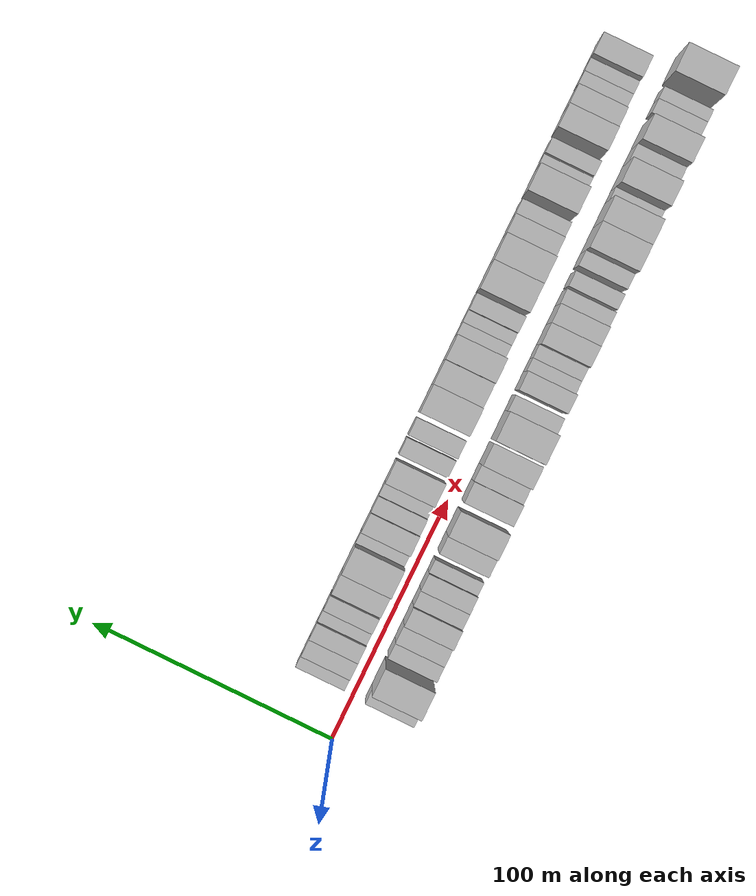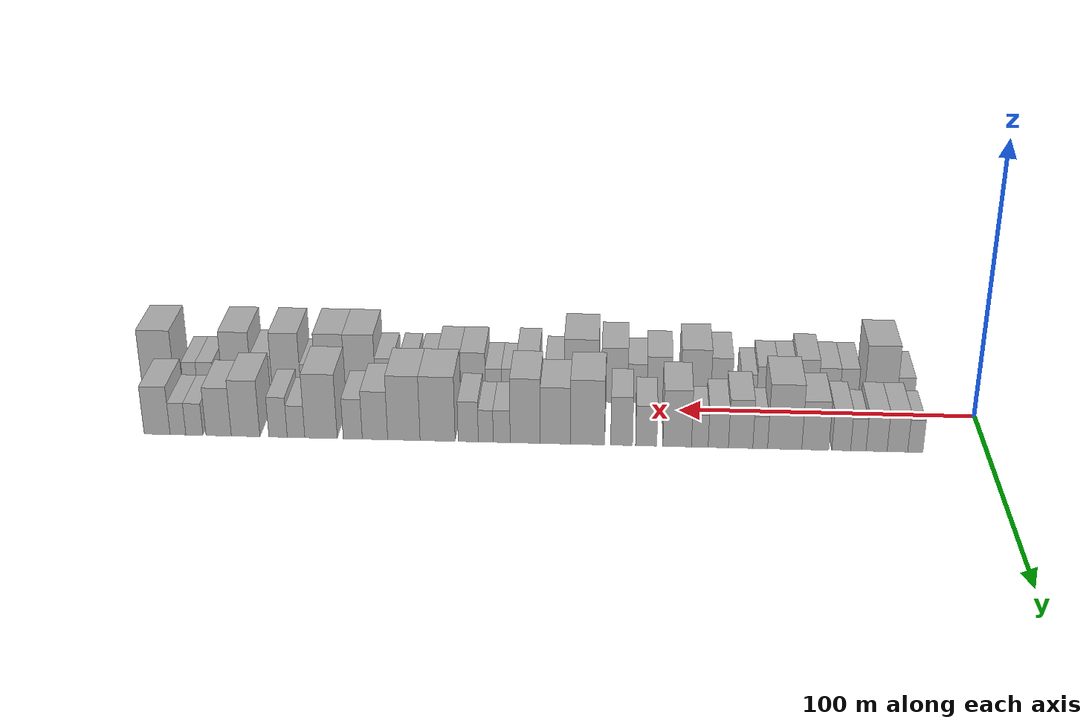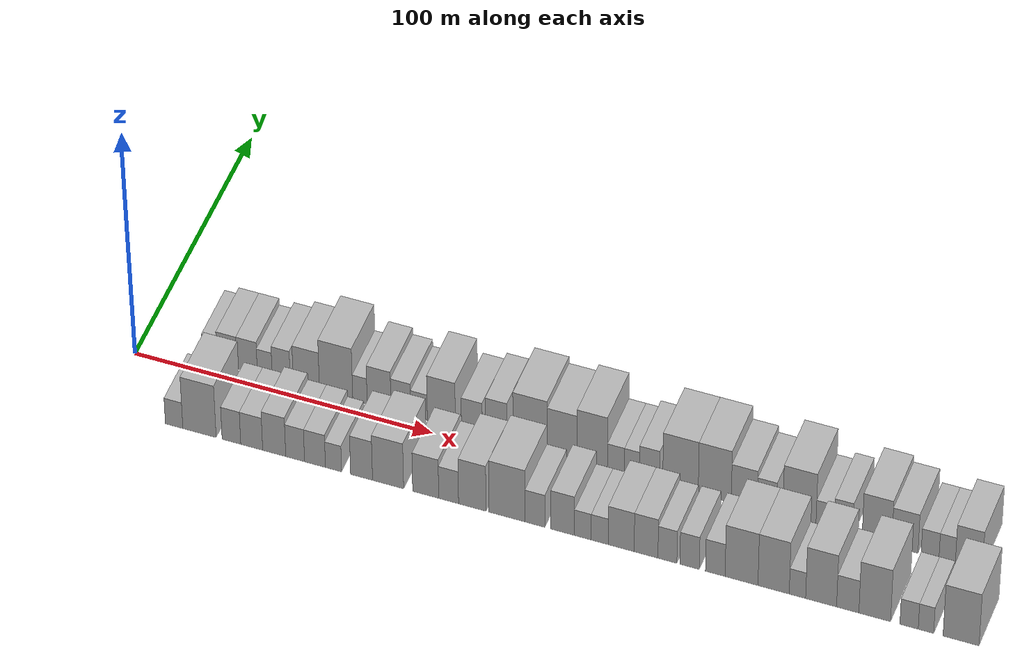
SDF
<sdf version="1.6">
 <world name="default">
  <scene>
   <sky><clouds><speed>12</speed></clouds></sky>
   <ambient>0.4 0.4 0.4 1</ambient>
   <background>0.7 0.7 0.7 1</background>
   <shadows>1</shadows>
  </scene>
  <gravity>0 0 -9.8066</gravity>
  <magnetic_field>6e-06 2.3e-05 -4.2e-05</magnetic_field>
  <physics default="0" name="default_physics" type="ode">
   <ode>
    <solver>
     <type>quick</type>
     <iters>10</iters>
     <sor>1.0</sor>
     <use_dynamic_moi_rescaling>0</use_dynamic_moi_rescaling>
    </solver>
    <constraints>
     <cfm>0</cfm>
     <erp>0.2</erp>
     <contact_max_correcting_vel>100</contact_max_correcting_vel>
     <contact_surface_layer>0.001</contact_surface_layer>
    </constraints>
   </ode>
   <max_step_size>0.004</max_step_size>
   <real_time_factor>1</real_time_factor>
   <real_time_update_rate>250</real_time_update_rate>
  </physics>
  <light name="sun" type="directional">
   <pose>0 0 10 0 0 0</pose>
   <diffuse>0.8 0.8 0.8 1</diffuse>
   <specular>0.2 0.2 0.2 1</specular>
   <attenuation>
    <range>1000</range>
    <constant>0.9</constant>
    <linear>0.01</linear>
    <quadratic>0.001</quadratic>
   </attenuation>
   <direction>-0.5 0.1 -0.9</direction>
  </light>
  <model name="building_1">
   <static>1</static>
   <pose>23.4650 14.5000 0 0.000000 0.000000 1.570796</pose>
   <link name="link">
    <pose>0 0 6.00 0 0 0</pose>
    <collision name="collision"><geometry><box><size>20.0000 4.9301 12.0000</size></box></geometry></collision>
    <visual name="visual">
     <cast_shadows>0</cast_shadows>
     <geometry><box><size>20.0000 4.9301 12.0000</size></box></geometry>
     <material>
      <script>
       <uri>model://HANNAS_wall/materials/scripts</uri>
       <uri>model://HANNAS_wall/materials/textures</uri>
       <name>vrc/HANNAS_wall</name>
      </script>
     </material>
    </visual>
   </link>
  </model>
  <model name="building_2">
   <static>1</static>
   <pose>29.2978 14.5000 0 0.000000 0.000000 1.570796</pose>
   <link name="link">
    <pose>0 0 7.50 0 0 0</pose>
    <collision name="collision"><geometry><box><size>20.0000 6.7355 15.0000</size></box></geometry></collision>
    <visual name="visual">
     <cast_shadows>0</cast_shadows>
     <geometry><box><size>20.0000 6.7355 15.0000</size></box></geometry>
     <material>
      <script>
       <uri>model://HANNAS_wall/materials/scripts</uri>
       <uri>model://HANNAS_wall/materials/textures</uri>
       <name>vrc/HANNAS_wall</name>
      </script>
     </material>
    </visual>
   </link>
  </model>
  <model name="building_3">
   <static>1</static>
   <pose>36.0947 14.5000 0 0.000000 0.000000 1.570796</pose>
   <link name="link">
    <pose>0 0 7.50 0 0 0</pose>
    <collision name="collision"><geometry><box><size>20.0000 6.8582 15.0000</size></box></geometry></collision>
    <visual name="visual">
     <cast_shadows>0</cast_shadows>
     <geometry><box><size>20.0000 6.8582 15.0000</size></box></geometry>
     <material>
      <script>
       <uri>model://HANNAS_wall/materials/scripts</uri>
       <uri>model://HANNAS_wall/materials/textures</uri>
       <name>vrc/HANNAS_wall</name>
      </script>
     </material>
    </visual>
   </link>
  </model>
  <model name="building_4">
   <static>1</static>
   <pose>42.0374 14.5000 0 0.000000 0.000000 1.570796</pose>
   <link name="link">
    <pose>0 0 6.00 0 0 0</pose>
    <collision name="collision"><geometry><box><size>20.0000 5.0272 12.0000</size></box></geometry></collision>
    <visual name="visual">
     <cast_shadows>0</cast_shadows>
     <geometry><box><size>20.0000 5.0272 12.0000</size></box></geometry>
     <material>
      <script>
       <uri>model://HANNAS_wall/materials/scripts</uri>
       <uri>model://HANNAS_wall/materials/textures</uri>
       <name>vrc/HANNAS_wall</name>
      </script>
     </material>
    </visual>
   </link>
  </model>
  <model name="building_5">
   <static>1</static>
   <pose>47.6003 14.5000 0 0.000000 0.000000 1.570796</pose>
   <link name="link">
    <pose>0 0 7.50 0 0 0</pose>
    <collision name="collision"><geometry><box><size>20.0000 6.0985 15.0000</size></box></geometry></collision>
    <visual name="visual">
     <cast_shadows>0</cast_shadows>
     <geometry><box><size>20.0000 6.0985 15.0000</size></box></geometry>
     <material>
      <script>
       <uri>model://HANNAS_wall/materials/scripts</uri>
       <uri>model://HANNAS_wall/materials/textures</uri>
       <name>vrc/HANNAS_wall</name>
      </script>
     </material>
    </visual>
   </link>
  </model>
  <model name="building_6">
   <static>1</static>
   <pose>56.0655 14.5000 0 0.000000 0.000000 1.570796</pose>
   <link name="link">
    <pose>0 0 9.00 0 0 0</pose>
    <collision name="collision"><geometry><box><size>20.0000 8.8320 18.0000</size></box></geometry></collision>
    <visual name="visual">
     <cast_shadows>0</cast_shadows>
     <geometry><box><size>20.0000 8.8320 18.0000</size></box></geometry>
     <material>
      <script>
       <uri>model://HANNAS_wall/materials/scripts</uri>
       <uri>model://HANNAS_wall/materials/textures</uri>
       <name>vrc/HANNAS_wall</name>
      </script>
     </material>
    </visual>
   </link>
  </model>
  <model name="building_7">
   <static>1</static>
   <pose>66.0699 14.5000 0 0.000000 0.000000 1.570796</pose>
   <link name="link">
    <pose>0 0 12.00 0 0 0</pose>
    <collision name="collision"><geometry><box><size>20.0000 11.1767 24.0000</size></box></geometry></collision>
    <visual name="visual">
     <cast_shadows>0</cast_shadows>
     <geometry><box><size>20.0000 11.1767 24.0000</size></box></geometry>
     <material>
      <script>
       <uri>model://HANNAS_wall/materials/scripts</uri>
       <uri>model://HANNAS_wall/materials/textures</uri>
       <name>vrc/HANNAS_wall</name>
      </script>
     </material>
    </visual>
   </link>
  </model>
  <model name="building_8">
   <static>1</static>
   <pose>74.0751 14.5000 0 0.000000 0.000000 1.570796</pose>
   <link name="link">
    <pose>0 0 6.00 0 0 0</pose>
    <collision name="collision"><geometry><box><size>20.0000 4.8337 12.0000</size></box></geometry></collision>
    <visual name="visual">
     <cast_shadows>0</cast_shadows>
     <geometry><box><size>20.0000 4.8337 12.0000</size></box></geometry>
     <material>
      <script>
       <uri>model://HANNAS_wall/materials/scripts</uri>
       <uri>model://HANNAS_wall/materials/textures</uri>
       <name>vrc/HANNAS_wall</name>
      </script>
     </material>
    </visual>
   </link>
  </model>
  <model name="building_9">
   <static>1</static>
   <pose>80.4872 14.5000 0 0.000000 0.000000 1.570796</pose>
   <link name="link">
    <pose>0 0 9.00 0 0 0</pose>
    <collision name="collision"><geometry><box><size>20.0000 7.9904 18.0000</size></box></geometry></collision>
    <visual name="visual">
     <cast_shadows>0</cast_shadows>
     <geometry><box><size>20.0000 7.9904 18.0000</size></box></geometry>
     <material>
      <script>
       <uri>model://HANNAS_wall/materials/scripts</uri>
       <uri>model://HANNAS_wall/materials/textures</uri>
       <name>vrc/HANNAS_wall</name>
      </script>
     </material>
    </visual>
   </link>
  </model>
  <model name="building_10">
   <static>1</static>
   <pose>87.8059 14.5000 0 0.000000 0.000000 1.570796</pose>
   <link name="link">
    <pose>0 0 7.50 0 0 0</pose>
    <collision name="collision"><geometry><box><size>20.0000 6.6469 15.0000</size></box></geometry></collision>
    <visual name="visual">
     <cast_shadows>0</cast_shadows>
     <geometry><box><size>20.0000 6.6469 15.0000</size></box></geometry>
     <material>
      <script>
       <uri>model://HANNAS_wall/materials/scripts</uri>
       <uri>model://HANNAS_wall/materials/textures</uri>
       <name>vrc/HANNAS_wall</name>
      </script>
     </material>
    </visual>
   </link>
  </model>
  <model name="building_11">
   <static>1</static>
   <pose>93.8801 14.5000 0 0.000000 0.000000 1.570796</pose>
   <link name="link">
    <pose>0 0 6.00 0 0 0</pose>
    <collision name="collision"><geometry><box><size>20.0000 5.5015 12.0000</size></box></geometry></collision>
    <visual name="visual">
     <cast_shadows>0</cast_shadows>
     <geometry><box><size>20.0000 5.5015 12.0000</size></box></geometry>
     <material>
      <script>
       <uri>model://HANNAS_wall/materials/scripts</uri>
       <uri>model://HANNAS_wall/materials/textures</uri>
       <name>vrc/HANNAS_wall</name>
      </script>
     </material>
    </visual>
   </link>
  </model>
  <model name="building_12">
   <static>1</static>
   <pose>101.3235 14.5000 0 0.000000 0.000000 1.570796</pose>
   <link name="link">
    <pose>0 0 10.50 0 0 0</pose>
    <collision name="collision"><geometry><box><size>20.0000 9.3853 21.0000</size></box></geometry></collision>
    <visual name="visual">
     <cast_shadows>0</cast_shadows>
     <geometry><box><size>20.0000 9.3853 21.0000</size></box></geometry>
     <material>
      <script>
       <uri>model://HANNAS_wall/materials/scripts</uri>
       <uri>model://HANNAS_wall/materials/textures</uri>
       <name>vrc/HANNAS_wall</name>
      </script>
     </material>
    </visual>
   </link>
  </model>
  <model name="building_13">
   <static>1</static>
   <pose>111.5054 14.5000 0 0.000000 0.000000 1.570796</pose>
   <link name="link">
    <pose>0 0 7.50 0 0 0</pose>
    <collision name="collision"><geometry><box><size>20.0000 6.9785 15.0000</size></box></geometry></collision>
    <visual name="visual">
     <cast_shadows>0</cast_shadows>
     <geometry><box><size>20.0000 6.9785 15.0000</size></box></geometry>
     <material>
      <script>
       <uri>model://HANNAS_wall/materials/scripts</uri>
       <uri>model://HANNAS_wall/materials/textures</uri>
       <name>vrc/HANNAS_wall</name>
      </script>
     </material>
    </visual>
   </link>
  </model>
  <model name="building_14">
   <static>1</static>
   <pose>119.5979 14.5000 0 0.000000 0.000000 1.570796</pose>
   <link name="link">
    <pose>0 0 9.00 0 0 0</pose>
    <collision name="collision"><geometry><box><size>20.0000 7.2065 18.0000</size></box></geometry></collision>
    <visual name="visual">
     <cast_shadows>0</cast_shadows>
     <geometry><box><size>20.0000 7.2065 18.0000</size></box></geometry>
     <material>
      <script>
       <uri>model://HANNAS_wall/materials/scripts</uri>
       <uri>model://HANNAS_wall/materials/textures</uri>
       <name>vrc/HANNAS_wall</name>
      </script>
     </material>
    </visual>
   </link>
  </model>
  <model name="building_15">
   <static>1</static>
   <pose>130.8828 14.5000 0 0.000000 0.000000 1.570796</pose>
   <link name="link">
    <pose>0 0 12.00 0 0 0</pose>
    <collision name="collision"><geometry><box><size>20.0000 11.3635 24.0000</size></box></geometry></collision>
    <visual name="visual">
     <cast_shadows>0</cast_shadows>
     <geometry><box><size>20.0000 11.3635 24.0000</size></box></geometry>
     <material>
      <script>
       <uri>model://HANNAS_wall/materials/scripts</uri>
       <uri>model://HANNAS_wall/materials/textures</uri>
       <name>vrc/HANNAS_wall</name>
      </script>
     </material>
    </visual>
   </link>
  </model>
  <model name="building_16">
   <static>1</static>
   <pose>141.5021 14.5000 0 0.000000 0.000000 1.570796</pose>
   <link name="link">
    <pose>0 0 10.50 0 0 0</pose>
    <collision name="collision"><geometry><box><size>20.0000 9.8750 21.0000</size></box></geometry></collision>
    <visual name="visual">
     <cast_shadows>0</cast_shadows>
     <geometry><box><size>20.0000 9.8750 21.0000</size></box></geometry>
     <material>
      <script>
       <uri>model://HANNAS_wall/materials/scripts</uri>
       <uri>model://HANNAS_wall/materials/textures</uri>
       <name>vrc/HANNAS_wall</name>
      </script>
     </material>
    </visual>
   </link>
  </model>
  <model name="building_17">
   <static>1</static>
   <pose>151.4321 14.5000 0 0.000000 0.000000 1.570796</pose>
   <link name="link">
    <pose>0 0 12.00 0 0 0</pose>
    <collision name="collision"><geometry><box><size>20.0000 9.9852 24.0000</size></box></geometry></collision>
    <visual name="visual">
     <cast_shadows>0</cast_shadows>
     <geometry><box><size>20.0000 9.9852 24.0000</size></box></geometry>
     <material>
      <script>
       <uri>model://HANNAS_wall/materials/scripts</uri>
       <uri>model://HANNAS_wall/materials/textures</uri>
       <name>vrc/HANNAS_wall</name>
      </script>
     </material>
    </visual>
   </link>
  </model>
  <model name="building_18">
   <static>1</static>
   <pose>159.2347 14.5000 0 0.000000 0.000000 1.570796</pose>
   <link name="link">
    <pose>0 0 6.00 0 0 0</pose>
    <collision name="collision"><geometry><box><size>20.0000 5.6200 12.0000</size></box></geometry></collision>
    <visual name="visual">
     <cast_shadows>0</cast_shadows>
     <geometry><box><size>20.0000 5.6200 12.0000</size></box></geometry>
     <material>
      <script>
       <uri>model://HANNAS_wall/materials/scripts</uri>
       <uri>model://HANNAS_wall/materials/textures</uri>
       <name>vrc/HANNAS_wall</name>
      </script>
     </material>
    </visual>
   </link>
  </model>
  <model name="building_19">
   <static>1</static>
   <pose>164.5146 14.5000 0 0.000000 0.000000 1.570796</pose>
   <link name="link">
    <pose>0 0 6.00 0 0 0</pose>
    <collision name="collision"><geometry><box><size>20.0000 4.9398 12.0000</size></box></geometry></collision>
    <visual name="visual">
     <cast_shadows>0</cast_shadows>
     <geometry><box><size>20.0000 4.9398 12.0000</size></box></geometry>
     <material>
      <script>
       <uri>model://HANNAS_wall/materials/scripts</uri>
       <uri>model://HANNAS_wall/materials/textures</uri>
       <name>vrc/HANNAS_wall</name>
      </script>
     </material>
    </visual>
   </link>
  </model>
  <model name="building_20">
   <static>1</static>
   <pose>170.3260 14.5000 0 0.000000 0.000000 1.570796</pose>
   <link name="link">
    <pose>0 0 7.50 0 0 0</pose>
    <collision name="collision"><geometry><box><size>20.0000 6.6828 15.0000</size></box></geometry></collision>
    <visual name="visual">
     <cast_shadows>0</cast_shadows>
     <geometry><box><size>20.0000 6.6828 15.0000</size></box></geometry>
     <material>
      <script>
       <uri>model://HANNAS_wall/materials/scripts</uri>
       <uri>model://HANNAS_wall/materials/textures</uri>
       <name>vrc/HANNAS_wall</name>
      </script>
     </material>
    </visual>
   </link>
  </model>
  <model name="building_21">
   <static>1</static>
   <pose>180.5012 14.5000 0 0.000000 0.000000 1.570796</pose>
   <link name="link">
    <pose>0 0 12.00 0 0 0</pose>
    <collision name="collision"><geometry><box><size>20.0000 11.6677 24.0000</size></box></geometry></collision>
    <visual name="visual">
     <cast_shadows>0</cast_shadows>
     <geometry><box><size>20.0000 11.6677 24.0000</size></box></geometry>
     <material>
      <script>
       <uri>model://HANNAS_wall/materials/scripts</uri>
       <uri>model://HANNAS_wall/materials/textures</uri>
       <name>vrc/HANNAS_wall</name>
      </script>
     </material>
    </visual>
   </link>
  </model>
  <model name="building_22">
   <static>1</static>
   <pose>191.7352 14.5000 0 0.000000 0.000000 1.570796</pose>
   <link name="link">
    <pose>0 0 12.00 0 0 0</pose>
    <collision name="collision"><geometry><box><size>20.0000 10.8002 24.0000</size></box></geometry></collision>
    <visual name="visual">
     <cast_shadows>0</cast_shadows>
     <geometry><box><size>20.0000 10.8002 24.0000</size></box></geometry>
     <material>
      <script>
       <uri>model://HANNAS_wall/materials/scripts</uri>
       <uri>model://HANNAS_wall/materials/textures</uri>
       <name>vrc/HANNAS_wall</name>
      </script>
     </material>
    </visual>
   </link>
  </model>
  <model name="building_23">
   <static>1</static>
   <pose>201.3734 14.5000 0 0.000000 0.000000 1.570796</pose>
   <link name="link">
    <pose>0 0 9.00 0 0 0</pose>
    <collision name="collision"><geometry><box><size>20.0000 8.4760 18.0000</size></box></geometry></collision>
    <visual name="visual">
     <cast_shadows>0</cast_shadows>
     <geometry><box><size>20.0000 8.4760 18.0000</size></box></geometry>
     <material>
      <script>
       <uri>model://HANNAS_wall/materials/scripts</uri>
       <uri>model://HANNAS_wall/materials/textures</uri>
       <name>vrc/HANNAS_wall</name>
      </script>
     </material>
    </visual>
   </link>
  </model>
  <model name="building_24">
   <static>1</static>
   <pose>208.7909 14.5000 0 0.000000 0.000000 1.570796</pose>
   <link name="link">
    <pose>0 0 7.50 0 0 0</pose>
    <collision name="collision"><geometry><box><size>20.0000 6.3590 15.0000</size></box></geometry></collision>
    <visual name="visual">
     <cast_shadows>0</cast_shadows>
     <geometry><box><size>20.0000 6.3590 15.0000</size></box></geometry>
     <material>
      <script>
       <uri>model://HANNAS_wall/materials/scripts</uri>
       <uri>model://HANNAS_wall/materials/textures</uri>
       <name>vrc/HANNAS_wall</name>
      </script>
     </material>
    </visual>
   </link>
  </model>
  <model name="building_25">
   <static>1</static>
   <pose>219.3993 14.5000 0 0.000000 0.000000 1.570796</pose>
   <link name="link">
    <pose>0 0 12.00 0 0 0</pose>
    <collision name="collision"><geometry><box><size>20.0000 10.8577 24.0000</size></box></geometry></collision>
    <visual name="visual">
     <cast_shadows>0</cast_shadows>
     <geometry><box><size>20.0000 10.8577 24.0000</size></box></geometry>
     <material>
      <script>
       <uri>model://HANNAS_wall/materials/scripts</uri>
       <uri>model://HANNAS_wall/materials/textures</uri>
       <name>vrc/HANNAS_wall</name>
      </script>
     </material>
    </visual>
   </link>
  </model>
  <model name="building_26">
   <static>1</static>
   <pose>227.7608 14.5000 0 0.000000 0.000000 1.570796</pose>
   <link name="link">
    <pose>0 0 6.00 0 0 0</pose>
    <collision name="collision"><geometry><box><size>20.0000 5.8654 12.0000</size></box></geometry></collision>
    <visual name="visual">
     <cast_shadows>0</cast_shadows>
     <geometry><box><size>20.0000 5.8654 12.0000</size></box></geometry>
     <material>
      <script>
       <uri>model://HANNAS_wall/materials/scripts</uri>
       <uri>model://HANNAS_wall/materials/textures</uri>
       <name>vrc/HANNAS_wall</name>
      </script>
     </material>
    </visual>
   </link>
  </model>
  <model name="building_27">
   <static>1</static>
   <pose>233.7735 14.5000 0 0.000000 0.000000 1.570796</pose>
   <link name="link">
    <pose>0 0 7.50 0 0 0</pose>
    <collision name="collision"><geometry><box><size>20.0000 6.1600 15.0000</size></box></geometry></collision>
    <visual name="visual">
     <cast_shadows>0</cast_shadows>
     <geometry><box><size>20.0000 6.1600 15.0000</size></box></geometry>
     <material>
      <script>
       <uri>model://HANNAS_wall/materials/scripts</uri>
       <uri>model://HANNAS_wall/materials/textures</uri>
       <name>vrc/HANNAS_wall</name>
      </script>
     </material>
    </visual>
   </link>
  </model>
  <model name="building_28">
   <static>1</static>
   <pose>244.6639 14.5000 0 0.000000 0.000000 1.570796</pose>
   <link name="link">
    <pose>0 0 10.50 0 0 0</pose>
    <collision name="collision"><geometry><box><size>20.0000 9.6207 21.0000</size></box></geometry></collision>
    <visual name="visual">
     <cast_shadows>0</cast_shadows>
     <geometry><box><size>20.0000 9.6207 21.0000</size></box></geometry>
     <material>
      <script>
       <uri>model://HANNAS_wall/materials/scripts</uri>
       <uri>model://HANNAS_wall/materials/textures</uri>
       <name>vrc/HANNAS_wall</name>
      </script>
     </material>
    </visual>
   </link>
  </model>
  <model name="building_29">
   <static>1</static>
   <pose>253.7332 14.5000 0 0.000000 0.000000 1.570796</pose>
   <link name="link">
    <pose>0 0 9.00 0 0 0</pose>
    <collision name="collision"><geometry><box><size>20.0000 8.5179 18.0000</size></box></geometry></collision>
    <visual name="visual">
     <cast_shadows>0</cast_shadows>
     <geometry><box><size>20.0000 8.5179 18.0000</size></box></geometry>
     <material>
      <script>
       <uri>model://HANNAS_wall/materials/scripts</uri>
       <uri>model://HANNAS_wall/materials/textures</uri>
       <name>vrc/HANNAS_wall</name>
      </script>
     </material>
    </visual>
   </link>
  </model>
  <model name="building_30">
   <static>1</static>
   <pose>261.8812 14.5000 0 0.000000 0.000000 1.570796</pose>
   <link name="link">
    <pose>0 0 6.00 0 0 0</pose>
    <collision name="collision"><geometry><box><size>20.0000 5.7782 12.0000</size></box></geometry></collision>
    <visual name="visual">
     <cast_shadows>0</cast_shadows>
     <geometry><box><size>20.0000 5.7782 12.0000</size></box></geometry>
     <material>
      <script>
       <uri>model://HANNAS_wall/materials/scripts</uri>
       <uri>model://HANNAS_wall/materials/textures</uri>
       <name>vrc/HANNAS_wall</name>
      </script>
     </material>
    </visual>
   </link>
  </model>
  <model name="building_31">
   <static>1</static>
   <pose>267.4118 14.5000 0 0.000000 0.000000 1.570796</pose>
   <link name="link">
    <pose>0 0 6.00 0 0 0</pose>
    <collision name="collision"><geometry><box><size>20.0000 5.2829 12.0000</size></box></geometry></collision>
    <visual name="visual">
     <cast_shadows>0</cast_shadows>
     <geometry><box><size>20.0000 5.2829 12.0000</size></box></geometry>
     <material>
      <script>
       <uri>model://HANNAS_wall/materials/scripts</uri>
       <uri>model://HANNAS_wall/materials/textures</uri>
       <name>vrc/HANNAS_wall</name>
      </script>
     </material>
    </visual>
   </link>
  </model>
  <model name="building_32">
   <static>1</static>
   <pose>274.4233 14.5000 0 0.000000 0.000000 1.570796</pose>
   <link name="link">
    <pose>0 0 9.00 0 0 0</pose>
    <collision name="collision"><geometry><box><size>20.0000 8.7401 18.0000</size></box></geometry></collision>
    <visual name="visual">
     <cast_shadows>0</cast_shadows>
     <geometry><box><size>20.0000 8.7401 18.0000</size></box></geometry>
     <material>
      <script>
       <uri>model://HANNAS_wall/materials/scripts</uri>
       <uri>model://HANNAS_wall/materials/textures</uri>
       <name>vrc/HANNAS_wall</name>
      </script>
     </material>
    </visual>
   </link>
  </model>
  <model name="building_33">
   <static>1</static>
   <pose>22.9316 -14.5000 0 0.000000 0.000000 1.570796</pose>
   <link name="link">
    <pose>0 0 6.00 0 0 0</pose>
    <collision name="collision"><geometry><box><size>20.0000 5.8632 12.0000</size></box></geometry></collision>
    <visual name="visual">
     <cast_shadows>0</cast_shadows>
     <geometry><box><size>20.0000 5.8632 12.0000</size></box></geometry>
     <material>
      <script>
       <uri>model://HANNAS_wall/materials/scripts</uri>
       <uri>model://HANNAS_wall/materials/textures</uri>
       <name>vrc/HANNAS_wall</name>
      </script>
     </material>
    </visual>
   </link>
  </model>
  <model name="building_34">
   <static>1</static>
   <pose>31.4618 -14.5000 0 0.000000 0.000000 1.570796</pose>
   <link name="link">
    <pose>0 0 12.00 0 0 0</pose>
    <collision name="collision"><geometry><box><size>20.0000 11.1972 24.0000</size></box></geometry></collision>
    <visual name="visual">
     <cast_shadows>0</cast_shadows>
     <geometry><box><size>20.0000 11.1972 24.0000</size></box></geometry>
     <material>
      <script>
       <uri>model://HANNAS_wall/materials/scripts</uri>
       <uri>model://HANNAS_wall/materials/textures</uri>
       <name>vrc/HANNAS_wall</name>
      </script>
     </material>
    </visual>
   </link>
  </model>
  <model name="building_35">
   <static>1</static>
   <pose>42.1840 -14.5000 0 0.000000 0.000000 1.570796</pose>
   <link name="link">
    <pose>0 0 7.50 0 0 0</pose>
    <collision name="collision"><geometry><box><size>20.0000 6.2473 15.0000</size></box></geometry></collision>
    <visual name="visual">
     <cast_shadows>0</cast_shadows>
     <geometry><box><size>20.0000 6.2473 15.0000</size></box></geometry>
     <material>
      <script>
       <uri>model://HANNAS_wall/materials/scripts</uri>
       <uri>model://HANNAS_wall/materials/textures</uri>
       <name>vrc/HANNAS_wall</name>
      </script>
     </material>
    </visual>
   </link>
  </model>
  <model name="building_36">
   <static>1</static>
   <pose>48.9838 -14.5000 0 0.000000 0.000000 1.570796</pose>
   <link name="link">
    <pose>0 0 7.50 0 0 0</pose>
    <collision name="collision"><geometry><box><size>20.0000 7.3523 15.0000</size></box></geometry></collision>
    <visual name="visual">
     <cast_shadows>0</cast_shadows>
     <geometry><box><size>20.0000 7.3523 15.0000</size></box></geometry>
     <material>
      <script>
       <uri>model://HANNAS_wall/materials/scripts</uri>
       <uri>model://HANNAS_wall/materials/textures</uri>
       <name>vrc/HANNAS_wall</name>
      </script>
     </material>
    </visual>
   </link>
  </model>
  <model name="building_37">
   <static>1</static>
   <pose>56.5193 -14.5000 0 0.000000 0.000000 1.570796</pose>
   <link name="link">
    <pose>0 0 9.00 0 0 0</pose>
    <collision name="collision"><geometry><box><size>20.0000 7.7187 18.0000</size></box></geometry></collision>
    <visual name="visual">
     <cast_shadows>0</cast_shadows>
     <geometry><box><size>20.0000 7.7187 18.0000</size></box></geometry>
     <material>
      <script>
       <uri>model://HANNAS_wall/materials/scripts</uri>
       <uri>model://HANNAS_wall/materials/textures</uri>
       <name>vrc/HANNAS_wall</name>
      </script>
     </material>
    </visual>
   </link>
  </model>
  <model name="building_38">
   <static>1</static>
   <pose>63.5209 -14.5000 0 0.000000 0.000000 1.570796</pose>
   <link name="link">
    <pose>0 0 7.50 0 0 0</pose>
    <collision name="collision"><geometry><box><size>20.0000 6.2843 15.0000</size></box></geometry></collision>
    <visual name="visual">
     <cast_shadows>0</cast_shadows>
     <geometry><box><size>20.0000 6.2843 15.0000</size></box></geometry>
     <material>
      <script>
       <uri>model://HANNAS_wall/materials/scripts</uri>
       <uri>model://HANNAS_wall/materials/textures</uri>
       <name>vrc/HANNAS_wall</name>
      </script>
     </material>
    </visual>
   </link>
  </model>
  <model name="building_39">
   <static>1</static>
   <pose>70.1465 -14.5000 0 0.000000 0.000000 1.570796</pose>
   <link name="link">
    <pose>0 0 7.50 0 0 0</pose>
    <collision name="collision"><geometry><box><size>20.0000 6.9668 15.0000</size></box></geometry></collision>
    <visual name="visual">
     <cast_shadows>0</cast_shadows>
     <geometry><box><size>20.0000 6.9668 15.0000</size></box></geometry>
     <material>
      <script>
       <uri>model://HANNAS_wall/materials/scripts</uri>
       <uri>model://HANNAS_wall/materials/textures</uri>
       <name>vrc/HANNAS_wall</name>
      </script>
     </material>
    </visual>
   </link>
  </model>
  <model name="building_40">
   <static>1</static>
   <pose>76.3278 -14.5000 0 0.000000 0.000000 1.570796</pose>
   <link name="link">
    <pose>0 0 6.00 0 0 0</pose>
    <collision name="collision"><geometry><box><size>20.0000 5.3959 12.0000</size></box></geometry></collision>
    <visual name="visual">
     <cast_shadows>0</cast_shadows>
     <geometry><box><size>20.0000 5.3959 12.0000</size></box></geometry>
     <material>
      <script>
       <uri>model://HANNAS_wall/materials/scripts</uri>
       <uri>model://HANNAS_wall/materials/textures</uri>
       <name>vrc/HANNAS_wall</name>
      </script>
     </material>
    </visual>
   </link>
  </model>
  <model name="building_41">
   <static>1</static>
   <pose>85.6645 -14.5000 0 0.000000 0.000000 1.570796</pose>
   <link name="link">
    <pose>0 0 9.00 0 0 0</pose>
    <collision name="collision"><geometry><box><size>20.0000 7.2773 18.0000</size></box></geometry></collision>
    <visual name="visual">
     <cast_shadows>0</cast_shadows>
     <geometry><box><size>20.0000 7.2773 18.0000</size></box></geometry>
     <material>
      <script>
       <uri>model://HANNAS_wall/materials/scripts</uri>
       <uri>model://HANNAS_wall/materials/textures</uri>
       <name>vrc/HANNAS_wall</name>
      </script>
     </material>
    </visual>
   </link>
  </model>
  <model name="building_42">
   <static>1</static>
   <pose>94.4713 -14.5000 0 0.000000 0.000000 1.570796</pose>
   <link name="link">
    <pose>0 0 10.50 0 0 0</pose>
    <collision name="collision"><geometry><box><size>20.0000 10.3362 21.0000</size></box></geometry></collision>
    <visual name="visual">
     <cast_shadows>0</cast_shadows>
     <geometry><box><size>20.0000 10.3362 21.0000</size></box></geometry>
     <material>
      <script>
       <uri>model://HANNAS_wall/materials/scripts</uri>
       <uri>model://HANNAS_wall/materials/textures</uri>
       <name>vrc/HANNAS_wall</name>
      </script>
     </material>
    </visual>
   </link>
  </model>
  <model name="building_43">
   <static>1</static>
   <pose>106.9473 -14.5000 0 0.000000 0.000000 1.570796</pose>
   <link name="link">
    <pose>0 0 9.00 0 0 0</pose>
    <collision name="collision"><geometry><box><size>20.0000 8.6159 18.0000</size></box></geometry></collision>
    <visual name="visual">
     <cast_shadows>0</cast_shadows>
     <geometry><box><size>20.0000 8.6159 18.0000</size></box></geometry>
     <material>
      <script>
       <uri>model://HANNAS_wall/materials/scripts</uri>
       <uri>model://HANNAS_wall/materials/textures</uri>
       <name>vrc/HANNAS_wall</name>
      </script>
     </material>
    </visual>
   </link>
  </model>
  <model name="building_44">
   <static>1</static>
   <pose>114.5352 -14.5000 0 0.000000 0.000000 1.570796</pose>
   <link name="link">
    <pose>0 0 7.50 0 0 0</pose>
    <collision name="collision"><geometry><box><size>20.0000 6.5600 15.0000</size></box></geometry></collision>
    <visual name="visual">
     <cast_shadows>0</cast_shadows>
     <geometry><box><size>20.0000 6.5600 15.0000</size></box></geometry>
     <material>
      <script>
       <uri>model://HANNAS_wall/materials/scripts</uri>
       <uri>model://HANNAS_wall/materials/textures</uri>
       <name>vrc/HANNAS_wall</name>
      </script>
     </material>
    </visual>
   </link>
  </model>
  <model name="building_45">
   <static>1</static>
   <pose>122.3524 -14.5000 0 0.000000 0.000000 1.570796</pose>
   <link name="link">
    <pose>0 0 10.50 0 0 0</pose>
    <collision name="collision"><geometry><box><size>20.0000 9.0743 21.0000</size></box></geometry></collision>
    <visual name="visual">
     <cast_shadows>0</cast_shadows>
     <geometry><box><size>20.0000 9.0743 21.0000</size></box></geometry>
     <material>
      <script>
       <uri>model://HANNAS_wall/materials/scripts</uri>
       <uri>model://HANNAS_wall/materials/textures</uri>
       <name>vrc/HANNAS_wall</name>
      </script>
     </material>
    </visual>
   </link>
  </model>
  <model name="building_46">
   <static>1</static>
   <pose>133.8128 -14.5000 0 0.000000 0.000000 1.570796</pose>
   <link name="link">
    <pose>0 0 12.00 0 0 0</pose>
    <collision name="collision"><geometry><box><size>20.0000 11.8466 24.0000</size></box></geometry></collision>
    <visual name="visual">
     <cast_shadows>0</cast_shadows>
     <geometry><box><size>20.0000 11.8466 24.0000</size></box></geometry>
     <material>
      <script>
       <uri>model://HANNAS_wall/materials/scripts</uri>
       <uri>model://HANNAS_wall/materials/textures</uri>
       <name>vrc/HANNAS_wall</name>
      </script>
     </material>
    </visual>
   </link>
  </model>
  <model name="building_47">
   <static>1</static>
   <pose>142.9982 -14.5000 0 0.000000 0.000000 1.570796</pose>
   <link name="link">
    <pose>0 0 7.50 0 0 0</pose>
    <collision name="collision"><geometry><box><size>20.0000 6.5241 15.0000</size></box></geometry></collision>
    <visual name="visual">
     <cast_shadows>0</cast_shadows>
     <geometry><box><size>20.0000 6.5241 15.0000</size></box></geometry>
     <material>
      <script>
       <uri>model://HANNAS_wall/materials/scripts</uri>
       <uri>model://HANNAS_wall/materials/textures</uri>
       <name>vrc/HANNAS_wall</name>
      </script>
     </material>
    </visual>
   </link>
  </model>
  <model name="building_48">
   <static>1</static>
   <pose>152.1178 -14.5000 0 0.000000 0.000000 1.570796</pose>
   <link name="link">
    <pose>0 0 9.00 0 0 0</pose>
    <collision name="collision"><geometry><box><size>20.0000 7.7152 18.0000</size></box></geometry></collision>
    <visual name="visual">
     <cast_shadows>0</cast_shadows>
     <geometry><box><size>20.0000 7.7152 18.0000</size></box></geometry>
     <material>
      <script>
       <uri>model://HANNAS_wall/materials/scripts</uri>
       <uri>model://HANNAS_wall/materials/textures</uri>
       <name>vrc/HANNAS_wall</name>
      </script>
     </material>
    </visual>
   </link>
  </model>
  <model name="building_49">
   <static>1</static>
   <pose>158.7117 -14.5000 0 0.000000 0.000000 1.570796</pose>
   <link name="link">
    <pose>0 0 6.00 0 0 0</pose>
    <collision name="collision"><geometry><box><size>20.0000 5.4725 12.0000</size></box></geometry></collision>
    <visual name="visual">
     <cast_shadows>0</cast_shadows>
     <geometry><box><size>20.0000 5.4725 12.0000</size></box></geometry>
     <material>
      <script>
       <uri>model://HANNAS_wall/materials/scripts</uri>
       <uri>model://HANNAS_wall/materials/textures</uri>
       <name>vrc/HANNAS_wall</name>
      </script>
     </material>
    </visual>
   </link>
  </model>
  <model name="building_50">
   <static>1</static>
   <pose>164.2217 -14.5000 0 0.000000 0.000000 1.570796</pose>
   <link name="link">
    <pose>0 0 6.00 0 0 0</pose>
    <collision name="collision"><geometry><box><size>20.0000 5.5475 12.0000</size></box></geometry></collision>
    <visual name="visual">
     <cast_shadows>0</cast_shadows>
     <geometry><box><size>20.0000 5.5475 12.0000</size></box></geometry>
     <material>
      <script>
       <uri>model://HANNAS_wall/materials/scripts</uri>
       <uri>model://HANNAS_wall/materials/textures</uri>
       <name>vrc/HANNAS_wall</name>
      </script>
     </material>
    </visual>
   </link>
  </model>
  <model name="building_51">
   <static>1</static>
   <pose>171.2679 -14.5000 0 0.000000 0.000000 1.570796</pose>
   <link name="link">
    <pose>0 0 9.00 0 0 0</pose>
    <collision name="collision"><geometry><box><size>20.0000 8.5451 18.0000</size></box></geometry></collision>
    <visual name="visual">
     <cast_shadows>0</cast_shadows>
     <geometry><box><size>20.0000 8.5451 18.0000</size></box></geometry>
     <material>
      <script>
       <uri>model://HANNAS_wall/materials/scripts</uri>
       <uri>model://HANNAS_wall/materials/textures</uri>
       <name>vrc/HANNAS_wall</name>
      </script>
     </material>
    </visual>
   </link>
  </model>
  <model name="building_52">
   <static>1</static>
   <pose>179.4101 -14.5000 0 0.000000 0.000000 1.570796</pose>
   <link name="link">
    <pose>0 0 9.00 0 0 0</pose>
    <collision name="collision"><geometry><box><size>20.0000 7.7392 18.0000</size></box></geometry></collision>
    <visual name="visual">
     <cast_shadows>0</cast_shadows>
     <geometry><box><size>20.0000 7.7392 18.0000</size></box></geometry>
     <material>
      <script>
       <uri>model://HANNAS_wall/materials/scripts</uri>
       <uri>model://HANNAS_wall/materials/textures</uri>
       <name>vrc/HANNAS_wall</name>
      </script>
     </material>
    </visual>
   </link>
  </model>
  <model name="building_53">
   <static>1</static>
   <pose>186.3647 -14.5000 0 0.000000 0.000000 1.570796</pose>
   <link name="link">
    <pose>0 0 7.50 0 0 0</pose>
    <collision name="collision"><geometry><box><size>20.0000 6.1700 15.0000</size></box></geometry></collision>
    <visual name="visual">
     <cast_shadows>0</cast_shadows>
     <geometry><box><size>20.0000 6.1700 15.0000</size></box></geometry>
     <material>
      <script>
       <uri>model://HANNAS_wall/materials/scripts</uri>
       <uri>model://HANNAS_wall/materials/textures</uri>
       <name>vrc/HANNAS_wall</name>
      </script>
     </material>
    </visual>
   </link>
  </model>
  <model name="building_54">
   <static>1</static>
   <pose>193.6052 -14.5000 0 0.000000 0.000000 1.570796</pose>
   <link name="link">
    <pose>0 0 7.50 0 0 0</pose>
    <collision name="collision"><geometry><box><size>20.0000 6.3111 15.0000</size></box></geometry></collision>
    <visual name="visual">
     <cast_shadows>0</cast_shadows>
     <geometry><box><size>20.0000 6.3111 15.0000</size></box></geometry>
     <material>
      <script>
       <uri>model://HANNAS_wall/materials/scripts</uri>
       <uri>model://HANNAS_wall/materials/textures</uri>
       <name>vrc/HANNAS_wall</name>
      </script>
     </material>
    </visual>
   </link>
  </model>
  <model name="building_55">
   <static>1</static>
   <pose>201.9342 -14.5000 0 0.000000 0.000000 1.570796</pose>
   <link name="link">
    <pose>0 0 7.50 0 0 0</pose>
    <collision name="collision"><geometry><box><size>20.0000 6.3468 15.0000</size></box></geometry></collision>
    <visual name="visual">
     <cast_shadows>0</cast_shadows>
     <geometry><box><size>20.0000 6.3468 15.0000</size></box></geometry>
     <material>
      <script>
       <uri>model://HANNAS_wall/materials/scripts</uri>
       <uri>model://HANNAS_wall/materials/textures</uri>
       <name>vrc/HANNAS_wall</name>
      </script>
     </material>
    </visual>
   </link>
  </model>
  <model name="building_56">
   <static>1</static>
   <pose>210.4470 -14.5000 0 0.000000 0.000000 1.570796</pose>
   <link name="link">
    <pose>0 0 12.00 0 0 0</pose>
    <collision name="collision"><geometry><box><size>20.0000 10.6788 24.0000</size></box></geometry></collision>
    <visual name="visual">
     <cast_shadows>0</cast_shadows>
     <geometry><box><size>20.0000 10.6788 24.0000</size></box></geometry>
     <material>
      <script>
       <uri>model://HANNAS_wall/materials/scripts</uri>
       <uri>model://HANNAS_wall/materials/textures</uri>
       <name>vrc/HANNAS_wall</name>
      </script>
     </material>
    </visual>
   </link>
  </model>
  <model name="building_57">
   <static>1</static>
   <pose>220.8538 -14.5000 0 0.000000 0.000000 1.570796</pose>
   <link name="link">
    <pose>0 0 12.00 0 0 0</pose>
    <collision name="collision"><geometry><box><size>20.0000 10.1348 24.0000</size></box></geometry></collision>
    <visual name="visual">
     <cast_shadows>0</cast_shadows>
     <geometry><box><size>20.0000 10.1348 24.0000</size></box></geometry>
     <material>
      <script>
       <uri>model://HANNAS_wall/materials/scripts</uri>
       <uri>model://HANNAS_wall/materials/textures</uri>
       <name>vrc/HANNAS_wall</name>
      </script>
     </material>
    </visual>
   </link>
  </model>
  <model name="building_58">
   <static>1</static>
   <pose>228.5713 -14.5000 0 0.000000 0.000000 1.570796</pose>
   <link name="link">
    <pose>0 0 6.00 0 0 0</pose>
    <collision name="collision"><geometry><box><size>20.0000 5.3003 12.0000</size></box></geometry></collision>
    <visual name="visual">
     <cast_shadows>0</cast_shadows>
     <geometry><box><size>20.0000 5.3003 12.0000</size></box></geometry>
     <material>
      <script>
       <uri>model://HANNAS_wall/materials/scripts</uri>
       <uri>model://HANNAS_wall/materials/textures</uri>
       <name>vrc/HANNAS_wall</name>
      </script>
     </material>
    </visual>
   </link>
  </model>
  <model name="building_59">
   <static>1</static>
   <pose>236.2193 -14.5000 0 0.000000 0.000000 1.570796</pose>
   <link name="link">
    <pose>0 0 12.00 0 0 0</pose>
    <collision name="collision"><geometry><box><size>20.0000 9.9958 24.0000</size></box></geometry></collision>
    <visual name="visual">
     <cast_shadows>0</cast_shadows>
     <geometry><box><size>20.0000 9.9958 24.0000</size></box></geometry>
     <material>
      <script>
       <uri>model://HANNAS_wall/materials/scripts</uri>
       <uri>model://HANNAS_wall/materials/textures</uri>
       <name>vrc/HANNAS_wall</name>
      </script>
     </material>
    </visual>
   </link>
  </model>
  <model name="building_60">
   <static>1</static>
   <pose>244.8066 -14.5000 0 0.000000 0.000000 1.570796</pose>
   <link name="link">
    <pose>0 0 7.50 0 0 0</pose>
    <collision name="collision"><geometry><box><size>20.0000 7.1786 15.0000</size></box></geometry></collision>
    <visual name="visual">
     <cast_shadows>0</cast_shadows>
     <geometry><box><size>20.0000 7.1786 15.0000</size></box></geometry>
     <material>
      <script>
       <uri>model://HANNAS_wall/materials/scripts</uri>
       <uri>model://HANNAS_wall/materials/textures</uri>
       <name>vrc/HANNAS_wall</name>
      </script>
     </material>
    </visual>
   </link>
  </model>
  <model name="building_61">
   <static>1</static>
   <pose>253.5013 -14.5000 0 0.000000 0.000000 1.570796</pose>
   <link name="link">
    <pose>0 0 12.00 0 0 0</pose>
    <collision name="collision"><geometry><box><size>20.0000 10.2108 24.0000</size></box></geometry></collision>
    <visual name="visual">
     <cast_shadows>0</cast_shadows>
     <geometry><box><size>20.0000 10.2108 24.0000</size></box></geometry>
     <material>
      <script>
       <uri>model://HANNAS_wall/materials/scripts</uri>
       <uri>model://HANNAS_wall/materials/textures</uri>
       <name>vrc/HANNAS_wall</name>
      </script>
     </material>
    </visual>
   </link>
  </model>
  <model name="building_62">
   <static>1</static>
   <pose>264.5497 -14.5000 0 0.000000 0.000000 1.570796</pose>
   <link name="link">
    <pose>0 0 6.00 0 0 0</pose>
    <collision name="collision"><geometry><box><size>20.0000 5.8860 12.0000</size></box></geometry></collision>
    <visual name="visual">
     <cast_shadows>0</cast_shadows>
     <geometry><box><size>20.0000 5.8860 12.0000</size></box></geometry>
     <material>
      <script>
       <uri>model://HANNAS_wall/materials/scripts</uri>
       <uri>model://HANNAS_wall/materials/textures</uri>
       <name>vrc/HANNAS_wall</name>
      </script>
     </material>
    </visual>
   </link>
  </model>
  <model name="building_63">
   <static>1</static>
   <pose>269.9735 -14.5000 0 0.000000 0.000000 1.570796</pose>
   <link name="link">
    <pose>0 0 6.00 0 0 0</pose>
    <collision name="collision"><geometry><box><size>20.0000 4.9617 12.0000</size></box></geometry></collision>
    <visual name="visual">
     <cast_shadows>0</cast_shadows>
     <geometry><box><size>20.0000 4.9617 12.0000</size></box></geometry>
     <material>
      <script>
       <uri>model://HANNAS_wall/materials/scripts</uri>
       <uri>model://HANNAS_wall/materials/textures</uri>
       <name>vrc/HANNAS_wall</name>
      </script>
     </material>
    </visual>
   </link>
  </model>
  <model name="building_64">
   <static>1</static>
   <pose>281.2040 -14.5000 0 0.000000 0.000000 1.570796</pose>
   <link name="link">
    <pose>0 0 12.00 0 0 0</pose>
    <collision name="collision"><geometry><box><size>20.0000 11.4994 24.0000</size></box></geometry></collision>
    <visual name="visual">
     <cast_shadows>0</cast_shadows>
     <geometry><box><size>20.0000 11.4994 24.0000</size></box></geometry>
     <material>
      <script>
       <uri>model://HANNAS_wall/materials/scripts</uri>
       <uri>model://HANNAS_wall/materials/textures</uri>
       <name>vrc/HANNAS_wall</name>
      </script>
     </material>
    </visual>
   </link>
  </model>
 </world>
</sdf>
